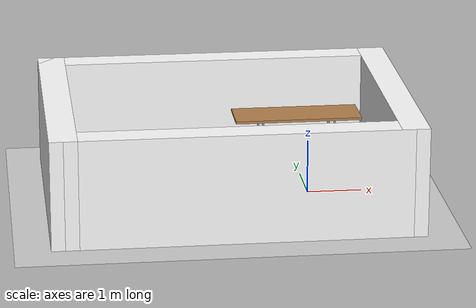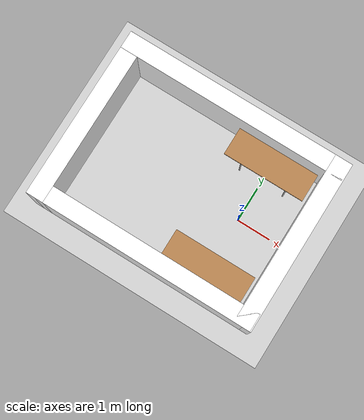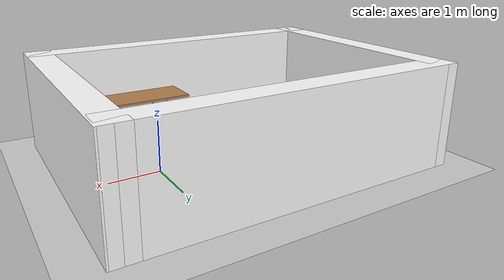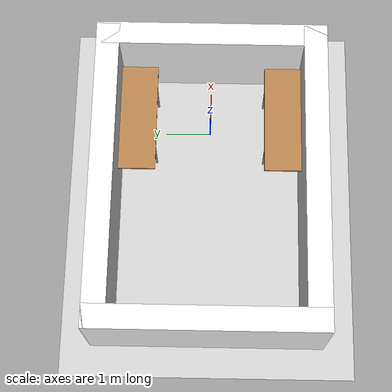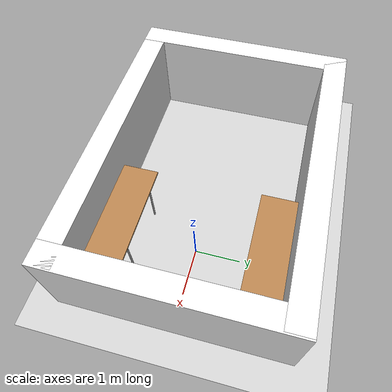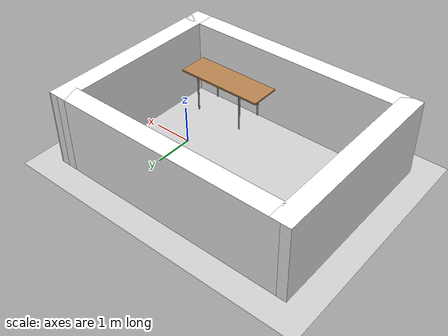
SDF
<?xml version="1.0" ?>
<sdf version="1.6">
  <world name="default">

    <!-- Lighting -->
    <include>
      <uri>https://fuel.gazebosim.org/1.0/openrobotics/models/sun</uri>
    </include>

    <!-- Ground -->
    <include>
      <uri>https://fuel.gazebosim.org/1.0/openrobotics/models/ground%20plane</uri>
    </include>

    <!-- Table -->
    <include>
      <uri>model://table</uri>
      <pose>0 -1.575 0 0 0 0</pose>
      <name>table1</name>
    </include>

    <include>
      <uri>model://table</uri>
      <pose>0 1.575 0 0 0 0</pose>
      <name>table2</name>
    </include>

    <model name="wall1">
      <static>true</static>
      <pose>1.54 0 1 0 0 1.57</pose>
      <link name="link">
        <visual name="visual"> <!--fysisk størrelse-->
          <geometry>
            <box>
              <size>4.95 0.5 2</size>
            </box>
          </geometry>
          <material> <!--farve-->
            <ambient>1 1 1 1</ambient>
            <diffuse>1 1 1 1</diffuse>
          </material>
        </visual>
        <collision name="collision"> <!--collision-->
          <geometry>
            <box>
              <size>4.95 0.5 2</size>
            </box>
          </geometry>
        </collision>
      </link>
    </model>

    <model name="wall2">
      <static>true</static>
      <pose>-4.595 0 1 0 0 1.57</pose>
      <link name="link">
        <visual name="visual"> <!--fysisk størrelse-->
          <geometry>
            <box>
              <size>4.95 0.5 2</size>
            </box>
          </geometry>
          <material> <!--farve-->
            <ambient>1 1 1 1</ambient>
            <diffuse>1 1 1 1</diffuse>
          </material>
        </visual>
        <collision name="collision"> <!--collision-->
          <geometry>
            <box>
              <size>4.95 0.5 2</size>
            </box>
          </geometry>
        </collision>
      </link>
    </model>

    <model name="wall3">
      <static>true</static>
      <pose>-1.5425 2.225 1 0 0 0</pose>
      <link name="link">
        <visual name="visual"> <!--fysisk størrelse-->
          <geometry>
            <box>
              <size>6.6 0.5 2</size>
            </box>
          </geometry>
          <material> <!--farve-->
            <ambient>1 1 1 1</ambient>
            <diffuse>1 1 1 1</diffuse>
          </material>
        </visual>
        <collision name="collision"> <!--collision-->
          <geometry>
            <box>
              <size>6.6 0.5 2</size>
            </box>
          </geometry>
        </collision>
      </link>
    </model>

    <model name="wall4">
      <static>true</static>
      <pose>-1.5425 -2.225 1 0 0 0</pose>
      <link name="link">
        <visual name="visual"> <!--fysisk størrelse-->
          <geometry>
            <box>
              <size>6.6 0.5 2</size>
            </box>
          </geometry>
          <material> <!--farve-->
            <ambient>1 1 1 1</ambient>
            <diffuse>1 1 1 1</diffuse>
          </material>
        </visual>
        <collision name="collision"> <!--collision-->
          <geometry>
            <box>
              <size>6.6 0.5 2</size>
            </box>
          </geometry>
        </collision>
      </link>
    </model>

    <plugin filename="gz-sim-physics-system" name="gz::sim::systems::Physics"/>
    <plugin filename="gz-sim-user-commands-system" name="gz::sim::systems::UserCommands"/>
    <plugin filename="gz-sim-scene-broadcaster-system" name="gz::sim::systems::SceneBroadcaster"/>
    <plugin filename="gz-sim-sensors-system" name="gz::sim::systems::Sensors"/>
  </world>
</sdf>

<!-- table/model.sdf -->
<sdf version="1.5">
  <model name="Table">
    <static>true</static>
    <link name="link">
      <collision name="surface">
        <pose>0 0 1.0 0 0 0</pose>
        <geometry>
          <box>
            <size>2.39 0.8 0.05</size>
          </box>
        </geometry>
        <surface>
          <friction>
            <ode>
              <mu>0.6</mu>
              <mu2>0.6</mu2>
            </ode>
          </friction>
        </surface>
      </collision>
      <visual name="visual1">
        <pose>0 0 1.0 0 0 0</pose>
        <geometry>
          <box>
            <size>2.39 0.8 0.05</size>
          </box>
        </geometry>
        <material>
          <diffuse>1.0 1.0 1.0</diffuse>
          <script>
            <uri>file://media/materials/scripts/gazebo.material</uri>
            <name>Gazebo/Wood</name>
          </script>
          <!-- PBR for Ignition, material scripts for gazebo classic-->
          <pbr>
            <metal>
              <albedo_map>model://table/Table_Diffuse.jpg</albedo_map>
            </metal>
          </pbr>
        </material>
      </visual>
      <collision name="front_left_leg">
        <pose>0.68 0.38 0.5 0 0 0</pose>
        <geometry>
          <cylinder>
            <radius>0.02</radius>
            <length>1.0</length>
          </cylinder>
        </geometry>
      </collision>
      <visual name="front_left_leg">
        <pose>0.68 0.38 0.5 0 0 0</pose>
        <geometry>
          <cylinder>
            <radius>0.02</radius>
            <length>1.0</length>
          </cylinder>
        </geometry>
        <material>
          <diffuse>0.5 0.5 0.5</diffuse>
          <script>
            <uri>file://media/materials/scripts/gazebo.material</uri>
            <name>Gazebo/Grey</name>
          </script>
        </material>
      </visual>
      <collision name="front_right_leg">
        <pose>0.68 -0.38 0.5 0 0 0</pose>
        <geometry>
          <cylinder>
            <radius>0.02</radius>
            <length>1.0</length>
          </cylinder>
        </geometry>
      </collision>
      <visual name="front_right_leg">
        <pose>0.68 -0.38 0.5 0 0 0</pose>
        <geometry>
          <cylinder>
            <radius>0.02</radius>
            <length>1.0</length>
          </cylinder>
        </geometry>
        <material>
          <diffuse>0.5 0.5 0.5</diffuse>
          <script>
            <uri>file://media/materials/scripts/gazebo.material</uri>
            <name>Gazebo/Grey</name>
          </script>
        </material>
      </visual>
      <collision name="back_right_leg">
        <pose>-0.68 -0.38 0.5 0 0 0</pose>
        <geometry>
          <cylinder>
            <radius>0.02</radius>
            <length>1.0</length>
          </cylinder>
        </geometry>
      </collision>
      <visual name="back_right_leg">
        <pose>-0.68 -0.38 0.5 0 0 0</pose>
        <geometry>
          <cylinder>
            <radius>0.02</radius>
            <length>1.0</length>
          </cylinder>
        </geometry>
        <material>
          <diffuse>0.5 0.5 0.5</diffuse>
          <script>
            <uri>file://media/materials/scripts/gazebo.material</uri>
            <name>Gazebo/Grey</name>
          </script>
        </material>
      </visual>
      <collision name="back_left_leg">
        <pose>-0.68 0.38 0.5 0 0 0</pose>
        <geometry>
          <cylinder>
            <radius>0.02</radius>
            <length>1.0</length>
          </cylinder>
        </geometry>
      </collision>
      <visual name="back_left_leg">
        <pose>-0.68 0.38 0.5 0 0 0</pose>
        <geometry>
          <cylinder>
            <radius>0.02</radius>
            <length>1.0</length>
          </cylinder>
        </geometry>
        <material>
          <diffuse>0.5 0.5 0.5</diffuse>
          <script>
            <uri>file://media/materials/scripts/gazebo.material</uri>
            <name>Gazebo/Grey</name>
          </script>
        </material>
      </visual>
    </link>
  </model>
</sdf>
